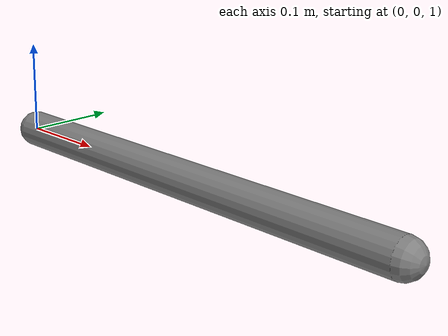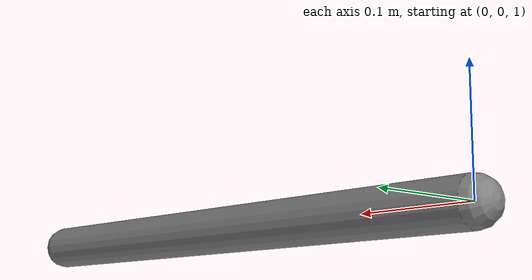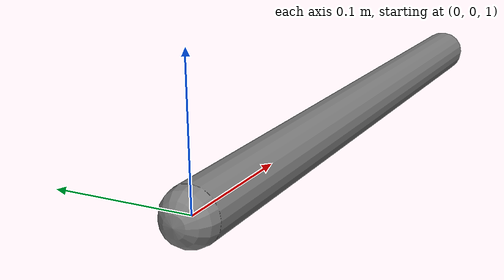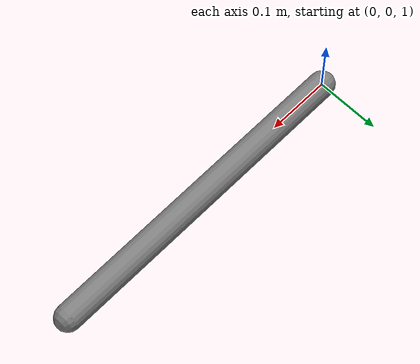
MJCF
<mujoco model="static-hinge">
  <option gravity="0 0 -9.81" timestep="0.001"/>
  <compiler angle="radian"/>
  <worldbody>
    <body name="arm" pos="0 0 1">
      <joint name="hinge" type="hinge" axis="0 1 0" damping="50"/>
      <geom type="capsule" size="0.02" fromto="0 0 0 0.5 0 0" mass="1.0"/>
      <site name="tip" pos="0.5 0 0"/>
      <site name="base" pos="0 0 0"/>
    </body>
  </worldbody>
  <actuator>
    <position name="motor" joint="hinge" kp="5000"/>
  </actuator>
  <sensor>
    <framelinvel name="tip_linvel" objtype="site" objname="tip"/>
    <frameangvel name="tip_angvel" objtype="site" objname="tip"/>
    <framelinacc name="tip_linacc" objtype="site" objname="tip"/>
    <frameangacc name="tip_angacc" objtype="site" objname="tip"/>
    <force name="base_force" site="base"/>
    <torque name="base_torque" site="base"/>
  </sensor>
</mujoco>
